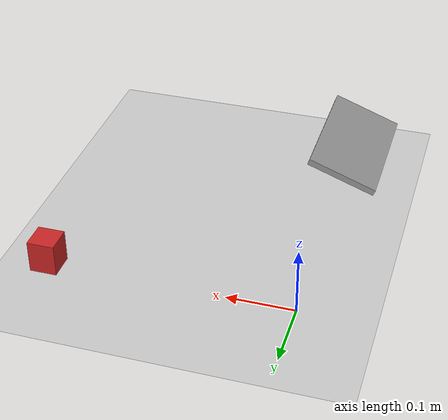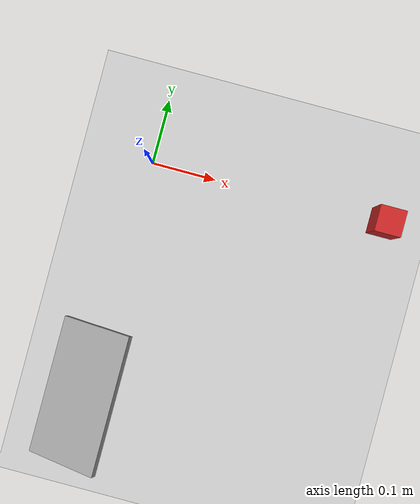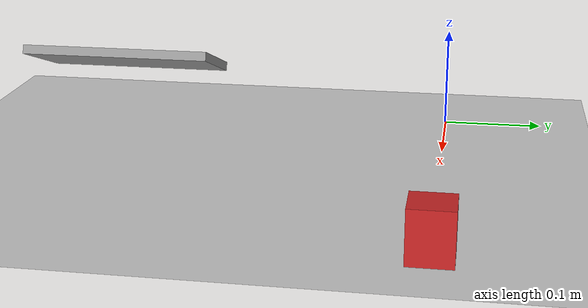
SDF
<sdf version="1.6">
 <world name="default">
  <light name="sun" type="directional">
   <pose>0 0 10 0 -0 0</pose>
   <diffuse>0.8 0.8 0.8 1</diffuse>
   <specular>0.2 0.2 0.2 1</specular>
   <attenuation>
    <range>1000</range>
    <constant>0.9</constant>
    <linear>0.01</linear>
    <quadratic>0.001</quadratic>
   </attenuation>
   <direction>-0.5 0.1 -0.9</direction>
  </light>
  <model name="ground_plane">
   <static>1</static>
   <link name="link">
    <collision name="collision">
     <geometry><plane><normal>0 0 1</normal><size>100 100</size></plane></geometry>
     <surface>
      <contact><collide_bitmask>65535</collide_bitmask></contact>
      <friction><ode><mu>1</mu><mu2>1</mu2></ode></friction>
     </surface>
    </collision>
    <visual name="visual">
     <cast_shadows>0</cast_shadows>
     <geometry><plane><normal>0 0 1</normal><size>100 100</size></plane></geometry>
     <material>
      <script><uri>file://media/materials/scripts/gazebo.material</uri><name>Gazebo/Grey</name></script>
     </material>
    </visual>
   </link>
  </model>
  <gravity>0 0 -9.8</gravity>
  <magnetic_field>6e-06 2.3e-05 -4.2e-05</magnetic_field>
  <atmosphere type="adiabatic"/>
  <physics name="default_physics" default="0" type="ode">
   <max_step_size>0.001</max_step_size>
   <real_time_factor>1</real_time_factor>
   <real_time_update_rate>1000</real_time_update_rate>
  </physics>
  <scene><ambient>0.4 0.4 0.4 1</ambient><background>0.7 0.7 0.7 1</background><shadows>1</shadows></scene>
  <audio><device>default</device></audio>
  <spherical_coordinates>
   <surface_model>EARTH_WGS84</surface_model>
   <latitude_deg>0</latitude_deg>
   <longitude_deg>0</longitude_deg>
   <elevation>0</elevation>
   <heading_deg>0</heading_deg>
  </spherical_coordinates>
  <model name="unit_box_0">
   <pose>0.363757 0.001726 0.023 0 -0 0.000662</pose>
   <link name="link">
    <inertial>
     <mass>0.01</mass>
     <inertia>
      <ixx>0.0166667</ixx>
      <ixy>0</ixy>
      <ixz>0</ixz>
      <iyy>0.0166667</iyy>
      <iyz>0</iyz>
      <izz>0.0166667</izz>
     </inertia>
    </inertial>
    <collision name="collision">
     <geometry><box><size>0.04 0.04 0.05</size></box></geometry>
     <surface>
      <friction><ode><mu>200</mu><mu2>100</mu2></ode></friction>
      <contact><ode><min_depth>0.002</min_depth><kp>100000</kp></ode></contact>
     </surface>
    </collision>
    <visual name="visual">
     <geometry><box><size>0.04 0.04 0.05</size></box></geometry>
     <material>
      <script><name>Gazebo/Red</name><uri>file://media/materials/scripts/gazebo.material</uri></script>
     </material>
    </visual>
    <velocity_decay><angular>1e-05</angular></velocity_decay>
   </link>
  </model>
  <model name="unit_box">
   <static>1</static>
   <pose>-0.00656 -0.357416 0.054729 0 -0.349922 0</pose>
   <link name="link">
    <inertial>
     <mass>1</mass>
     <inertia>
      <ixx>0.166667</ixx>
      <ixy>0</ixy>
      <ixz>0</ixz>
      <iyy>0.166667</iyy>
      <iyz>0</iyz>
      <izz>0.166667</izz>
     </inertia>
    </inertial>
    <collision name="collision">
     <geometry><box><size>0.110022 0.204638 0.009881</size></box></geometry>
    </collision>
    <visual name="visual">
     <geometry><box><size>0.110022 0.204638 0.009881</size></box></geometry>
     <material>
      <script><name>Gazebo/Grey</name><uri>file://media/materials/scripts/gazebo.material</uri></script>
     </material>
    </visual>
   </link>
  </model>
 </world>
</sdf>
